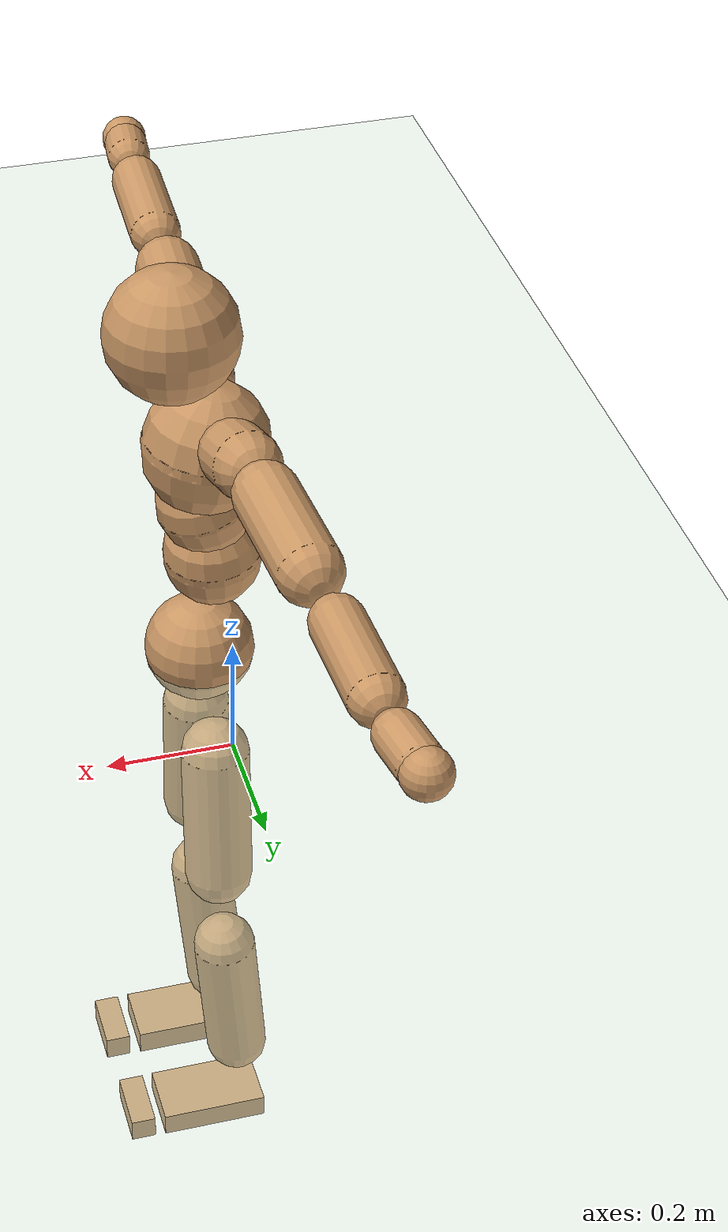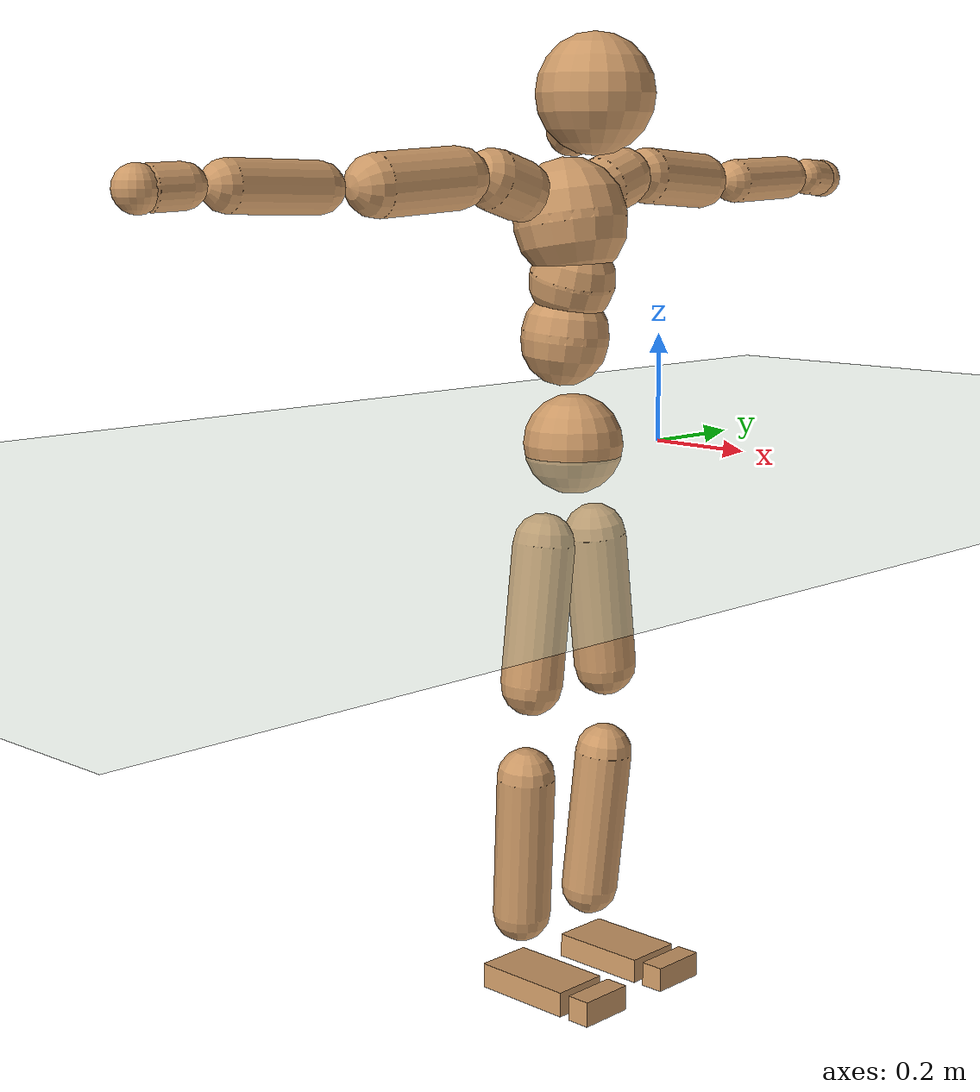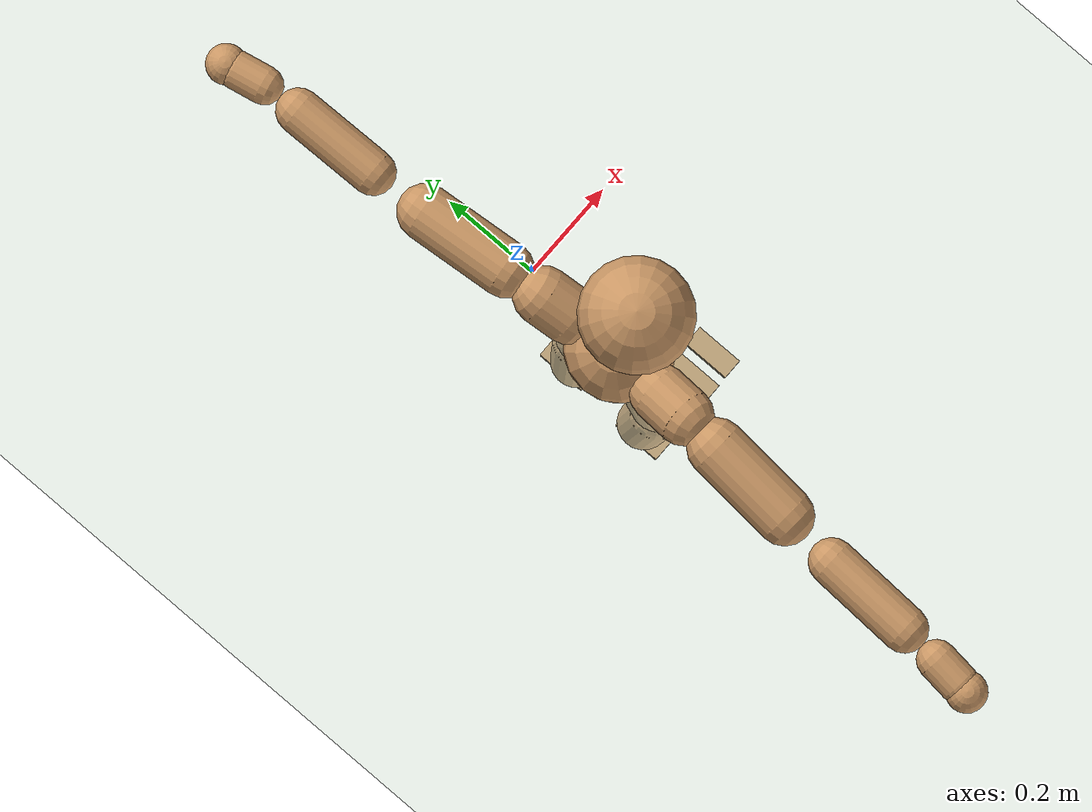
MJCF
<mujoco model="humanoid">
  <compiler coordinate="local"/>
  <default>
    <joint damping="0.0" armature="0.01" stiffness="0.0" limited="true"/>
    <geom conaffinity="1" condim="3" contype="7" margin="0.001" rgba="0.8 0.6 .4 1"/>
  </default>
  <asset>
    <texture type="skybox" builtin="gradient" rgb1=".4 .5 .6" rgb2="0 0 0" width="100" height="100"/>
    <texture builtin="flat" height="1278" mark="cross" markrgb="1 1 1" name="texgeom" random="0.01" rgb1="0.8 0.6 0.4" rgb2="0.8 0.6 0.4" type="cube" width="127"/>
    <texture builtin="checker" height="100" name="texplane" rgb1="0 0 0" rgb2="0.8 0.8 0.8" type="2d" width="100"/>
    <material name="MatPlane" reflectance="0.5" shininess="1" specular="1" texrepeat="60 60" texture="texplane"/>
    <material name="geom" texture="texgeom" texuniform="true"/>
  </asset>
  <worldbody>
    <light cutoff="100" diffuse="1 1 1" dir="-0 0 -1.3" directional="true" exponent="1" pos="0 0 1.3" specular=".1 .1 .1"/>
    <geom conaffinity="1" condim="3" name="floor" pos="0 0 0" rgba="0.8 0.9 0.8 1" size="100 100 .2" type="plane" material="MatPlane"/>
    <body name="Pelvis" pos="-0.0036 -0.23 0.0187">
      <freejoint name="Pelvis"/>
      <geom type="sphere" contype="1" conaffinity="1" density="4629.6296296296305" size="0.0897" pos="0.0000 0.0000 0.0000" name="Pelvis"/>
      <body name="L_Hip" pos="-0.0086 0.0583 -0.0916">
        <joint name="L_Hip_x" type="hinge" pos="0 0 0" axis="1 0 0" stiffness="800" damping="80" armature="0.02" range="-90.0000 90.0000"/>
        <joint name="L_Hip_y" type="hinge" pos="0 0 0" axis="0 1 0" stiffness="800" damping="80" armature="0.02" range="-90.0000 90.0000"/>
        <joint name="L_Hip_z" type="hinge" pos="0 0 0" axis="0 0 1" stiffness="800" damping="80" armature="0.02" range="-90.0000 90.0000"/>
        <geom type="capsule" contype="1" conaffinity="1" density="2040.816327" fromto="0.0007 0.0093 -0.0829 0.0030 0.0372 -0.3317" size="0.0571" name="L_Hip"/>
        <body name="L_Knee" pos="0.0037 0.0465 -0.4146">
          <joint name="L_Knee_x" type="hinge" pos="0 0 0" axis="1 0 0" stiffness="800" damping="80" armature="0.02" range="-5.6250 5.6250"/>
          <joint name="L_Knee_y" type="hinge" pos="0 0 0" axis="0 1 0" stiffness="800" damping="80" armature="0.02" range="0.0000 180.0000"/>
          <joint name="L_Knee_z" type="hinge" pos="0 0 0" axis="0 0 1" stiffness="800" damping="80" armature="0.02" range="-5.6250 5.6250"/>
          <geom type="capsule" contype="1" conaffinity="1" density="1234.567901" fromto="-0.0080 -0.0036 -0.0891 -0.0320 -0.0145 -0.3563" size="0.0531" name="L_Knee"/>
          <body name="L_Ankle" pos="-0.04 -0.0181 -0.4454">
            <joint name="L_Ankle_x" type="hinge" pos="0 0 0" axis="1 0 0" stiffness="800" damping="80" armature="0.02" range="-45.0000 45.0000"/>
            <joint name="L_Ankle_y" type="hinge" pos="0 0 0" axis="0 1 0" stiffness="800" damping="80" armature="0.02" range="-90.0000 90.0000"/>
            <joint name="L_Ankle_z" type="hinge" pos="0 0 0" axis="0 0 1" stiffness="800" damping="80" armature="0.02" range="-45.0000 45.0000"/>
            <geom type="box" contype="1" conaffinity="1" density="999.999988" pos="0.0656 0.0169 -0.0302" size="0.0923 0.0539 0.022" quat="1.0000 0.0000 0.0000 0.0000" name="L_Ankle"/>
            <body name="L_Toe" pos="0.1312 0.0339 -0.0603">
              <joint name="L_Toe_x" type="hinge" pos="0 0 0" axis="1 0 0" stiffness="500" damping="50" armature="0.02" range="-180.0000 180.0000"/>
              <joint name="L_Toe_y" type="hinge" pos="0 0 0" axis="0 1 0" stiffness="500" damping="50" armature="0.02" range="-180.0000 180.0000"/>
              <joint name="L_Toe_z" type="hinge" pos="0 0 0" axis="0 0 1" stiffness="500" damping="50" armature="0.02" range="-180.0000 180.0000"/>
              <geom type="box" contype="1" conaffinity="1" density="1001.420198" pos="0.0666 -0.0169 0.0304" size="0.0215 0.0523 0.0222" quat="1.0000 0.0000 0.0000 0.0000" name="L_Toe"/>
            </body>
          </body>
        </body>
      </body>
      <body name="R_Hip" pos="-0.0077 -0.0572 -0.0901">
        <joint name="R_Hip_x" type="hinge" pos="0 0 0" axis="1 0 0" stiffness="800" damping="80" armature="0.02" range="-90.0000 90.0000"/>
        <joint name="R_Hip_y" type="hinge" pos="0 0 0" axis="0 1 0" stiffness="800" damping="80" armature="0.02" range="-90.0000 90.0000"/>
        <joint name="R_Hip_z" type="hinge" pos="0 0 0" axis="0 0 1" stiffness="800" damping="80" armature="0.02" range="-90.0000 90.0000"/>
        <geom type="capsule" contype="1" conaffinity="1" density="2040.816327" fromto="-0.0010 -0.0094 -0.0843 -0.0042 -0.0378 -0.3374" size="0.0558" name="R_Hip"/>
        <body name="R_Knee" pos="-0.0052 -0.0472 -0.4217">
          <joint name="R_Knee_x" type="hinge" pos="0 0 0" axis="1 0 0" stiffness="800" damping="80" armature="0.02" range="-5.6250 5.6250"/>
          <joint name="R_Knee_y" type="hinge" pos="0 0 0" axis="0 1 0" stiffness="800" damping="80" armature="0.02" range="0.0000 180.0000"/>
          <joint name="R_Knee_z" type="hinge" pos="0 0 0" axis="0 0 1" stiffness="800" damping="80" armature="0.02" range="-5.6250 5.6250"/>
          <geom type="capsule" contype="1" conaffinity="1" density="1234.567901" fromto="-0.0078 0.0040 -0.0890 -0.0311 0.0160 -0.3559" size="0.0532" name="R_Knee"/>
          <body name="R_Ankle" pos="-0.0389 0.02 -0.4449">
            <joint name="R_Ankle_x" type="hinge" pos="0 0 0" axis="1 0 0" stiffness="800" damping="80" armature="0.02" range="-45.0000 45.0000"/>
            <joint name="R_Ankle_y" type="hinge" pos="0 0 0" axis="0 1 0" stiffness="800" damping="80" armature="0.02" range="-90.0000 90.0000"/>
            <joint name="R_Ankle_z" type="hinge" pos="0 0 0" axis="0 0 1" stiffness="800" damping="80" armature="0.02" range="-45.0000 45.0000"/>
            <geom type="box" contype="1" conaffinity="1" density="999.99999" pos="0.0685 -0.0149 -0.0264" size="0.0964 0.0528 0.0227" quat="1.0000 0.0000 0.0000 0.0000" name="R_Ankle"/>
            <body name="R_Toe" pos="0.137 -0.0298 -0.0528">
              <joint name="R_Toe_x" type="hinge" pos="0 0 0" axis="1 0 0" stiffness="500" damping="50" armature="0.02" range="-180.0000 180.0000"/>
              <joint name="R_Toe_y" type="hinge" pos="0 0 0" axis="0 1 0" stiffness="500" damping="50" armature="0.02" range="-180.0000 180.0000"/>
              <joint name="R_Toe_z" type="hinge" pos="0 0 0" axis="0 0 1" stiffness="500" damping="50" armature="0.02" range="-180.0000 180.0000"/>
              <geom type="box" contype="1" conaffinity="1" density="1063.036882" pos="0.0695 0.0149 0.0266" size="0.0217 0.0516 0.0229" quat="1.0000 0.0000 0.0000 0.0000" name="R_Toe"/>
            </body>
          </body>
        </body>
      </body>
      <body name="Torso" pos="-0.0275 -0.0029 0.1147">
        <joint name="Torso_x" type="hinge" pos="0 0 0" axis="1 0 0" stiffness="1000" damping="100" armature="0.02" range="-60.0000 60.0000"/>
        <joint name="Torso_y" type="hinge" pos="0 0 0" axis="0 1 0" stiffness="1000" damping="100" armature="0.02" range="-60.0000 60.0000"/>
        <joint name="Torso_z" type="hinge" pos="0 0 0" axis="0 0 1" stiffness="1000" damping="100" armature="0.02" range="-60.0000 60.0000"/>
        <geom type="capsule" contype="1" conaffinity="1" density="2040.816327" fromto="0.0046 0.0043 0.0654 0.0057 0.0053 0.0799" size="0.0786" name="Torso"/>
        <body name="Spine" pos="0.0103 0.0096 0.1452">
          <joint name="Spine_x" type="hinge" pos="0 0 0" axis="1 0 0" stiffness="1000" damping="100" armature="0.02" range="-60.0000 60.0000"/>
          <joint name="Spine_y" type="hinge" pos="0 0 0" axis="0 1 0" stiffness="1000" damping="100" armature="0.02" range="-60.0000 60.0000"/>
          <joint name="Spine_z" type="hinge" pos="0 0 0" axis="0 0 1" stiffness="1000" damping="100" armature="0.02" range="-60.0000 60.0000"/>
          <geom type="capsule" contype="1" conaffinity="1" density="2040.816327" fromto="0.0072 0.0002 0.0262 0.0089 0.0002 0.0321" size="0.0769" name="Spine"/>
          <body name="Chest" pos="0.0161 0.0004 0.0583">
            <joint name="Chest_x" type="hinge" pos="0 0 0" axis="1 0 0" stiffness="1000" damping="100" armature="0.02" range="-60.0000 60.0000"/>
            <joint name="Chest_y" type="hinge" pos="0 0 0" axis="0 1 0" stiffness="1000" damping="100" armature="0.02" range="-60.0000 60.0000"/>
            <joint name="Chest_z" type="hinge" pos="0 0 0" axis="0 0 1" stiffness="1000" damping="100" armature="0.02" range="-60.0000 60.0000"/>
            <geom type="capsule" contype="1" conaffinity="1" density="2040.816327" fromto="-0.0112 -0.0015 0.0693 -0.0137 -0.0018 0.0847" size="0.101" name="Chest"/>
            <body name="Neck" pos="-0.0173 -0.0044 0.2173">
              <joint name="Neck_x" type="hinge" pos="0 0 0" axis="1 0 0" stiffness="500" damping="50" armature="0.02" range="-5.6250 5.6250"/>
              <joint name="Neck_y" type="hinge" pos="0 0 0" axis="0 1 0" stiffness="500" damping="50" armature="0.02" range="-90.0000 90.0000"/>
              <joint name="Neck_z" type="hinge" pos="0 0 0" axis="0 0 1" stiffness="500" damping="50" armature="0.02" range="-90.0000 90.0000"/>
              <geom type="capsule" contype="1" conaffinity="1" density="1000" fromto="0.0113 0.0019 0.0148 0.0454 0.0075 0.0592" size="0.0475" name="Neck"/>
              <body name="Head" pos="0.0567 0.0094 0.074">
                <joint name="Head_x" type="hinge" pos="0 0 0" axis="1 0 0" stiffness="500" damping="50" armature="0.02" range="-5.6250 5.6250"/>
                <joint name="Head_y" type="hinge" pos="0 0 0" axis="0 1 0" stiffness="500" damping="50" armature="0.02" range="-90.0000 90.0000"/>
                <joint name="Head_z" type="hinge" pos="0 0 0" axis="0 0 1" stiffness="500" damping="50" armature="0.02" range="-90.0000 90.0000"/>
                <geom type="sphere" contype="1" conaffinity="1" density="1000" size="0.1052" pos="0.0000 0.0000 0.0000" name="Head"/>
              </body>
            </body>
            <body name="L_Thorax" pos="-0.0276 0.081 0.1245">
              <joint name="L_Thorax_x" type="hinge" pos="0 0 0" axis="1 0 0" stiffness="500" damping="50" armature="0.02" range="-5.6250 5.6250"/>
              <joint name="L_Thorax_y" type="hinge" pos="0 0 0" axis="0 1 0" stiffness="500" damping="50" armature="0.02" range="-5.6250 5.6250"/>
              <joint name="L_Thorax_z" type="hinge" pos="0 0 0" axis="0 0 1" stiffness="500" damping="50" armature="0.02" range="-5.6250 5.6250"/>
              <geom type="capsule" contype="1" conaffinity="1" density="1000" fromto="-0.0019 0.0196 0.0059 -0.0077 0.0784 0.0235" size="0.0541" name="L_Thorax"/>
              <body name="L_Shoulder" pos="-0.0096 0.0979 0.0293">
                <joint name="L_Shoulder_x" type="hinge" pos="0 0 0" axis="1 0 0" stiffness="500" damping="50" armature="0.02" range="-720.0000 720.0000"/>
                <joint name="L_Shoulder_y" type="hinge" pos="0 0 0" axis="0 1 0" stiffness="500" damping="50" armature="0.02" range="-720.0000 720.0000"/>
                <joint name="L_Shoulder_z" type="hinge" pos="0 0 0" axis="0 0 1" stiffness="500" damping="50" armature="0.02" range="-720.0000 720.0000"/>
                <geom type="capsule" contype="1" conaffinity="1" density="1000" fromto="-0.0052 0.0585 -0.0037 -0.0210 0.2341 -0.0148" size="0.0513" name="L_Shoulder"/>
                <body name="L_Elbow" pos="-0.0262 0.2926 -0.0184">
                  <joint name="L_Elbow_x" type="hinge" pos="0 0 0" axis="1 0 0" stiffness="500" damping="50" armature="0.02" range="-5.6250 5.6250"/>
                  <joint name="L_Elbow_y" type="hinge" pos="0 0 0" axis="0 1 0" stiffness="500" damping="50" armature="0.02" range="-5.6250 5.6250"/>
                  <joint name="L_Elbow_z" type="hinge" pos="0 0 0" axis="0 0 1" stiffness="500" damping="50" armature="0.02" range="-180.0000 0.0000"/>
                  <geom type="capsule" contype="1" conaffinity="1" density="1000" fromto="-0.0012 0.0569 0.0020 -0.0046 0.2278 0.0079" size="0.0416" name="L_Elbow"/>
                  <body name="L_Wrist" pos="-0.0058 0.2847 0.0099">
                    <joint name="L_Wrist_x" type="hinge" pos="0 0 0" axis="1 0 0" stiffness="300" damping="30" armature="0.02" range="-180.0000 180.0000"/>
                    <joint name="L_Wrist_y" type="hinge" pos="0 0 0" axis="0 1 0" stiffness="300" damping="30" armature="0.02" range="-180.0000 180.0000"/>
                    <joint name="L_Wrist_z" type="hinge" pos="0 0 0" axis="0 0 1" stiffness="300" damping="30" armature="0.02" range="-180.0000 180.0000"/>
                    <geom type="capsule" contype="1" conaffinity="1" density="1000" fromto="-0.0038 0.0190 -0.0011 -0.0153 0.0760 -0.0044" size="0.0355" name="L_Wrist"/>
                    <body name="L_Hand" pos="-0.0191 0.0949 -0.0055">
                      <joint name="L_Hand_x" type="hinge" pos="0 0 0" axis="1 0 0" stiffness="300" damping="30" armature="0.02" range="-180.0000 180.0000"/>
                      <joint name="L_Hand_y" type="hinge" pos="0 0 0" axis="0 1 0" stiffness="300" damping="30" armature="0.02" range="-180.0000 180.0000"/>
                      <joint name="L_Hand_z" type="hinge" pos="0 0 0" axis="0 0 1" stiffness="300" damping="30" armature="0.02" range="-180.0000 180.0000"/>
                      <geom type="sphere" contype="1" conaffinity="1" density="1000" size="0.0375" pos="0.0000 0.0000 0.0000" name="L_Hand"/>
                    </body>
                  </body>
                </body>
              </body>
            </body>
            <body name="R_Thorax" pos="-0.03 -0.0866 0.1201">
              <joint name="R_Thorax_x" type="hinge" pos="0 0 0" axis="1 0 0" stiffness="500" damping="50" armature="0.02" range="-5.6250 5.6250"/>
              <joint name="R_Thorax_y" type="hinge" pos="0 0 0" axis="0 1 0" stiffness="500" damping="50" armature="0.02" range="-5.6250 5.6250"/>
              <joint name="R_Thorax_z" type="hinge" pos="0 0 0" axis="0 0 1" stiffness="500" damping="50" armature="0.02" range="-5.6250 5.6250"/>
              <geom type="capsule" contype="1" conaffinity="1" density="1000" fromto="-0.0011 -0.0212 0.0067 -0.0043 -0.0847 0.0267" size="0.0536" name="R_Thorax"/>
              <body name="R_Shoulder" pos="-0.0054 -0.1059 0.0333">
                <joint name="R_Shoulder_x" type="hinge" pos="0 0 0" axis="1 0 0" stiffness="500" damping="50" armature="0.02" range="-720.0000 720.0000"/>
                <joint name="R_Shoulder_y" type="hinge" pos="0 0 0" axis="0 1 0" stiffness="500" damping="50" armature="0.02" range="-720.0000 720.0000"/>
                <joint name="R_Shoulder_z" type="hinge" pos="0 0 0" axis="0 0 1" stiffness="500" damping="50" armature="0.02" range="-720.0000 720.0000"/>
                <geom type="capsule" contype="1" conaffinity="1" density="1000" fromto="-0.0043 -0.0568 -0.0036 -0.0173 -0.2272 -0.0144" size="0.0535" name="R_Shoulder"/>
                <body name="R_Elbow" pos="-0.0217 -0.2841 -0.018">
                  <joint name="R_Elbow_x" type="hinge" pos="0 0 0" axis="1 0 0" stiffness="500" damping="50" armature="0.02" range="-5.6250 5.6250"/>
                  <joint name="R_Elbow_y" type="hinge" pos="0 0 0" axis="0 1 0" stiffness="500" damping="50" armature="0.02" range="-5.6250 5.6250"/>
                  <joint name="R_Elbow_z" type="hinge" pos="0 0 0" axis="0 0 1" stiffness="500" damping="50" armature="0.02" range="0.0000 180.0000"/>
                  <geom type="capsule" contype="1" conaffinity="1" density="1000" fromto="-0.0024 -0.0583 0.0015 -0.0095 -0.2332 0.0062" size="0.0428" name="R_Elbow"/>
                  <body name="R_Wrist" pos="-0.0119 -0.2915 0.0077">
                    <joint name="R_Wrist_x" type="hinge" pos="0 0 0" axis="1 0 0" stiffness="300" damping="30" armature="0.02" range="-180.0000 180.0000"/>
                    <joint name="R_Wrist_y" type="hinge" pos="0 0 0" axis="0 1 0" stiffness="300" damping="30" armature="0.02" range="-180.0000 180.0000"/>
                    <joint name="R_Wrist_z" type="hinge" pos="0 0 0" axis="0 0 1" stiffness="300" damping="30" armature="0.02" range="-180.0000 180.0000"/>
                    <geom type="capsule" contype="1" conaffinity="1" density="1000" fromto="-0.0021 -0.0192 -0.0008 -0.0084 -0.0768 -0.0033" size="0.0366" name="R_Wrist"/>
                    <body name="R_Hand" pos="-0.0105 -0.096 -0.0042">
                      <joint name="R_Hand_x" type="hinge" pos="0 0 0" axis="1 0 0" stiffness="300" damping="30" armature="0.02" range="-180.0000 180.0000"/>
                      <joint name="R_Hand_y" type="hinge" pos="0 0 0" axis="0 1 0" stiffness="300" damping="30" armature="0.02" range="-180.0000 180.0000"/>
                      <joint name="R_Hand_z" type="hinge" pos="0 0 0" axis="0 0 1" stiffness="300" damping="30" armature="0.02" range="-180.0000 180.0000"/>
                      <geom type="sphere" contype="1" conaffinity="1" density="1000" size="0.0384" pos="0.0000 0.0000 0.0000" name="R_Hand"/>
                    </body>
                  </body>
                </body>
              </body>
            </body>
          </body>
        </body>
      </body>
    </body>
  </worldbody>
  <actuator>
    <motor name="L_Hip_x" joint="L_Hip_x" gear="500"/>
    <motor name="L_Hip_y" joint="L_Hip_y" gear="500"/>
    <motor name="L_Hip_z" joint="L_Hip_z" gear="500"/>
    <motor name="L_Knee_x" joint="L_Knee_x" gear="500"/>
    <motor name="L_Knee_y" joint="L_Knee_y" gear="500"/>
    <motor name="L_Knee_z" joint="L_Knee_z" gear="500"/>
    <motor name="L_Ankle_x" joint="L_Ankle_x" gear="500"/>
    <motor name="L_Ankle_y" joint="L_Ankle_y" gear="500"/>
    <motor name="L_Ankle_z" joint="L_Ankle_z" gear="500"/>
    <motor name="L_Toe_x" joint="L_Toe_x" gear="500"/>
    <motor name="L_Toe_y" joint="L_Toe_y" gear="500"/>
    <motor name="L_Toe_z" joint="L_Toe_z" gear="500"/>
    <motor name="R_Hip_x" joint="R_Hip_x" gear="500"/>
    <motor name="R_Hip_y" joint="R_Hip_y" gear="500"/>
    <motor name="R_Hip_z" joint="R_Hip_z" gear="500"/>
    <motor name="R_Knee_x" joint="R_Knee_x" gear="500"/>
    <motor name="R_Knee_y" joint="R_Knee_y" gear="500"/>
    <motor name="R_Knee_z" joint="R_Knee_z" gear="500"/>
    <motor name="R_Ankle_x" joint="R_Ankle_x" gear="500"/>
    <motor name="R_Ankle_y" joint="R_Ankle_y" gear="500"/>
    <motor name="R_Ankle_z" joint="R_Ankle_z" gear="500"/>
    <motor name="R_Toe_x" joint="R_Toe_x" gear="500"/>
    <motor name="R_Toe_y" joint="R_Toe_y" gear="500"/>
    <motor name="R_Toe_z" joint="R_Toe_z" gear="500"/>
    <motor name="Torso_x" joint="Torso_x" gear="500"/>
    <motor name="Torso_y" joint="Torso_y" gear="500"/>
    <motor name="Torso_z" joint="Torso_z" gear="500"/>
    <motor name="Spine_x" joint="Spine_x" gear="500"/>
    <motor name="Spine_y" joint="Spine_y" gear="500"/>
    <motor name="Spine_z" joint="Spine_z" gear="500"/>
    <motor name="Chest_x" joint="Chest_x" gear="500"/>
    <motor name="Chest_y" joint="Chest_y" gear="500"/>
    <motor name="Chest_z" joint="Chest_z" gear="500"/>
    <motor name="Neck_x" joint="Neck_x" gear="500"/>
    <motor name="Neck_y" joint="Neck_y" gear="500"/>
    <motor name="Neck_z" joint="Neck_z" gear="500"/>
    <motor name="Head_x" joint="Head_x" gear="500"/>
    <motor name="Head_y" joint="Head_y" gear="500"/>
    <motor name="Head_z" joint="Head_z" gear="500"/>
    <motor name="L_Thorax_x" joint="L_Thorax_x" gear="500"/>
    <motor name="L_Thorax_y" joint="L_Thorax_y" gear="500"/>
    <motor name="L_Thorax_z" joint="L_Thorax_z" gear="500"/>
    <motor name="L_Shoulder_x" joint="L_Shoulder_x" gear="500"/>
    <motor name="L_Shoulder_y" joint="L_Shoulder_y" gear="500"/>
    <motor name="L_Shoulder_z" joint="L_Shoulder_z" gear="500"/>
    <motor name="L_Elbow_x" joint="L_Elbow_x" gear="500"/>
    <motor name="L_Elbow_y" joint="L_Elbow_y" gear="500"/>
    <motor name="L_Elbow_z" joint="L_Elbow_z" gear="500"/>
    <motor name="L_Wrist_x" joint="L_Wrist_x" gear="500"/>
    <motor name="L_Wrist_y" joint="L_Wrist_y" gear="500"/>
    <motor name="L_Wrist_z" joint="L_Wrist_z" gear="500"/>
    <motor name="L_Hand_x" joint="L_Hand_x" gear="500"/>
    <motor name="L_Hand_y" joint="L_Hand_y" gear="500"/>
    <motor name="L_Hand_z" joint="L_Hand_z" gear="500"/>
    <motor name="R_Thorax_x" joint="R_Thorax_x" gear="500"/>
    <motor name="R_Thorax_y" joint="R_Thorax_y" gear="500"/>
    <motor name="R_Thorax_z" joint="R_Thorax_z" gear="500"/>
    <motor name="R_Shoulder_x" joint="R_Shoulder_x" gear="500"/>
    <motor name="R_Shoulder_y" joint="R_Shoulder_y" gear="500"/>
    <motor name="R_Shoulder_z" joint="R_Shoulder_z" gear="500"/>
    <motor name="R_Elbow_x" joint="R_Elbow_x" gear="500"/>
    <motor name="R_Elbow_y" joint="R_Elbow_y" gear="500"/>
    <motor name="R_Elbow_z" joint="R_Elbow_z" gear="500"/>
    <motor name="R_Wrist_x" joint="R_Wrist_x" gear="500"/>
    <motor name="R_Wrist_y" joint="R_Wrist_y" gear="500"/>
    <motor name="R_Wrist_z" joint="R_Wrist_z" gear="500"/>
    <motor name="R_Hand_x" joint="R_Hand_x" gear="500"/>
    <motor name="R_Hand_y" joint="R_Hand_y" gear="500"/>
    <motor name="R_Hand_z" joint="R_Hand_z" gear="500"/>
  </actuator>
  <contact>
    <exclude body1="Torso" body2="Chest"/>
    <exclude body1="Head" body2="Chest"/>
    <exclude body1="R_Knee" body2="R_Toe"/>
    <exclude body1="R_Knee" body2="L_Ankle"/>
    <exclude body1="R_Knee" body2="L_Toe"/>
    <exclude body1="L_Knee" body2="L_Toe"/>
    <exclude body1="L_Knee" body2="R_Ankle"/>
    <exclude body1="L_Knee" body2="R_Toe"/>
    <exclude body1="L_Shoulder" body2="Chest"/>
    <exclude body1="R_Shoulder" body2="Chest"/>
  </contact>
  <sensor/>
  <size njmax="700" nconmax="700"/>
</mujoco>
